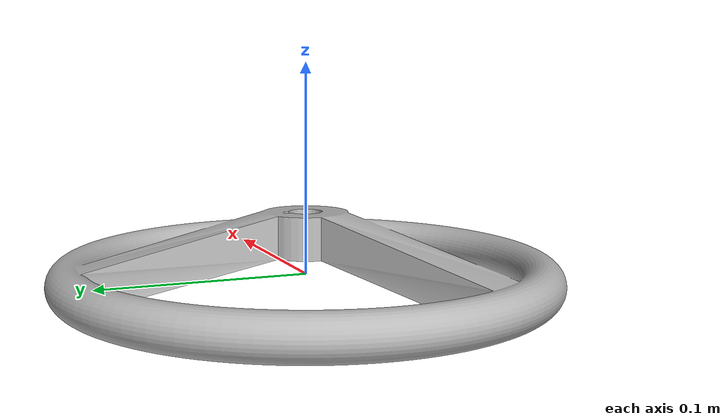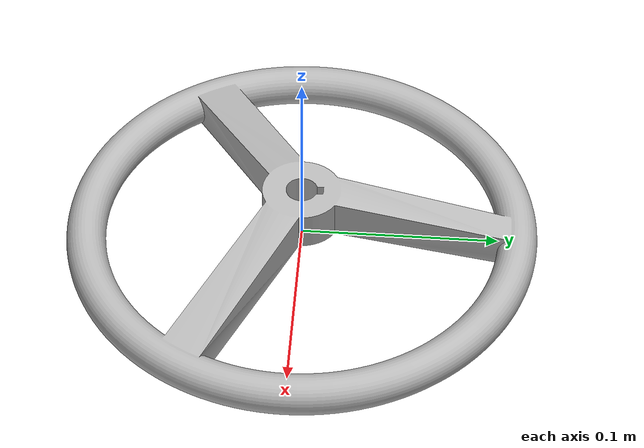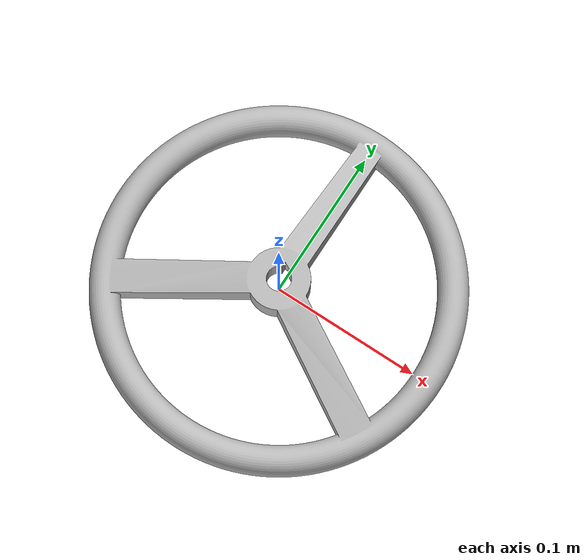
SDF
<?xml version="1.0" ?>
<sdf version="1.5">
  <model name="valve_model">
    <link name="valve_gt">
      <inertial>
        <mass>0.2</mass>
        <inertia>
          <ixx>0.5</ixx>
          <ixy>0</ixy>
          <ixz>0</ixz>
          <iyy>0.5</iyy>
          <iyz>0</iyz>
          <izz>0.5</izz>
        </inertia>
      </inertial>
      <collision name="collision">
        <geometry>
          <mesh>
            <uri>model://valve/meshes/valve.stl</uri>
          </mesh>
        </geometry>
      </collision>
      <visual name="visual">
        <geometry>
          <mesh>
            <uri>model://valve/meshes/valve.stl</uri>
          </mesh>
        </geometry>
      </visual>
    </link>
  </model>
</sdf>
